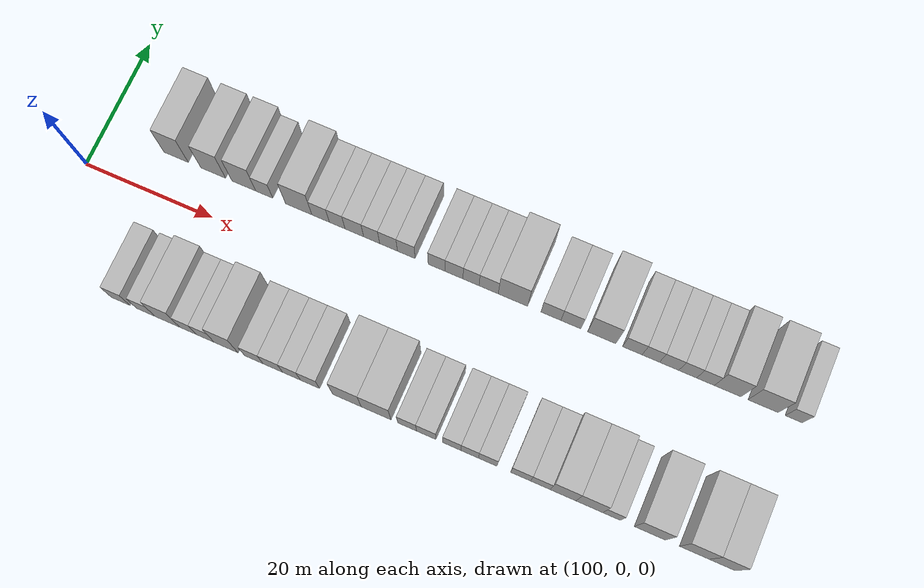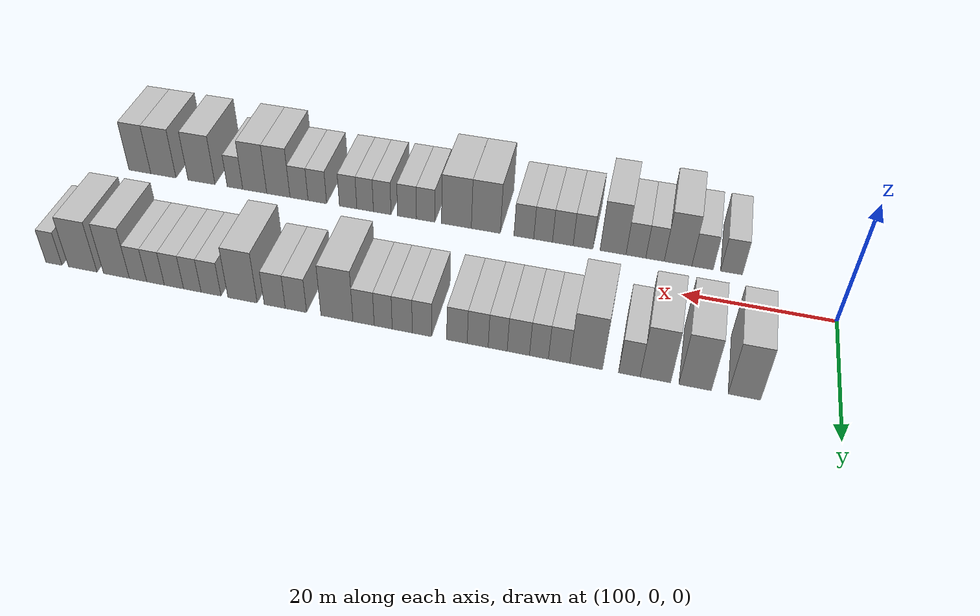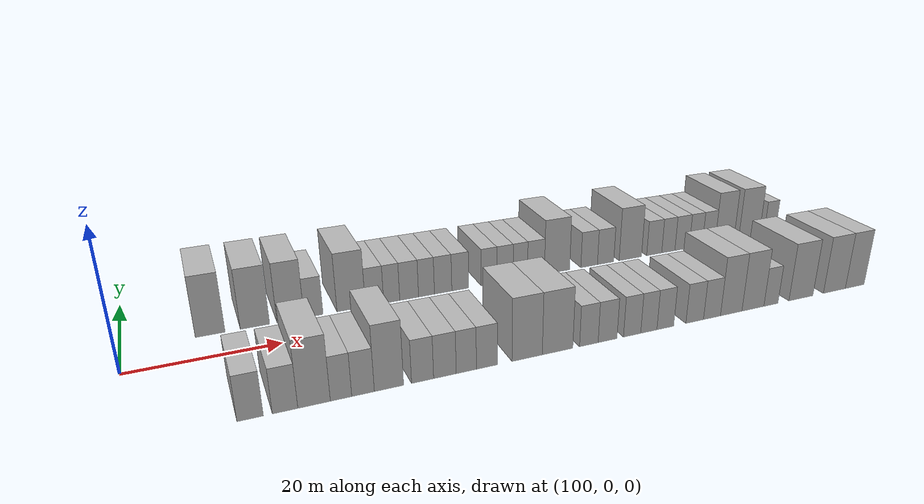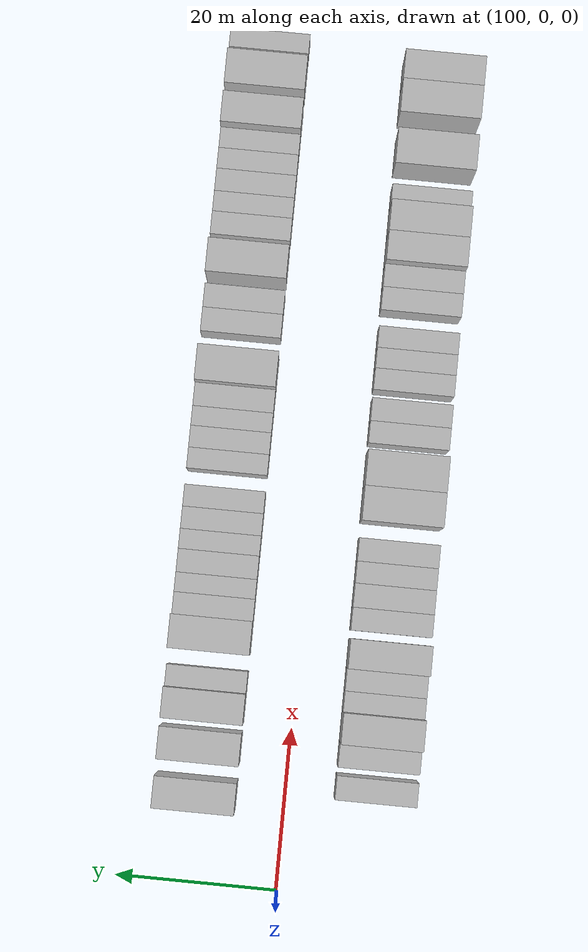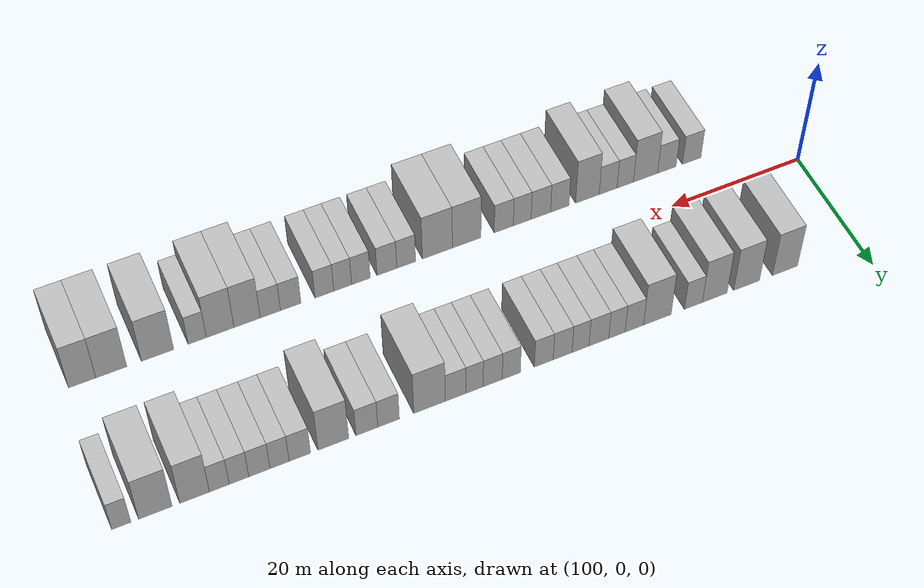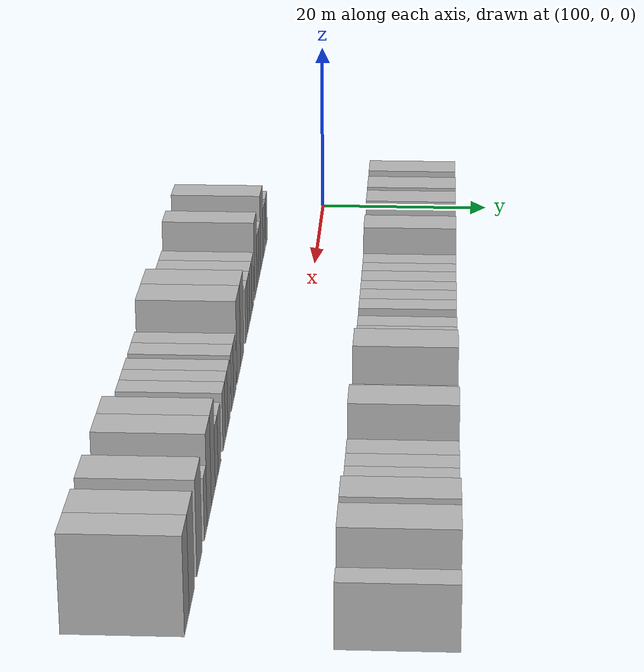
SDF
<sdf version="1.6">
 <world name="default">
  <model name="building_27">
   <static>1</static>
   <pose>111.3026 11.0000 0 0.000000 0.000000 1.570796</pose>
   <link name="link">
    <pose>0 0 4.50 0 0 0</pose>
    <collision name="collision"><geometry><box><size>10.0000 3.8650 9.0000</size></box></geometry></collision>
    <visual name="visual">
     <cast_shadows>0</cast_shadows>
     <geometry><box><size>10.0000 3.8650 9.0000</size></box></geometry>
     <material>
      <script>
       <uri>model://HANNAS_wall/materials/scripts</uri>
       <uri>model://HANNAS_wall/materials/textures</uri>
       <name>vrc/HANNAS_wall</name>
      </script>
     </material>
    </visual>
   </link>
  </model>
  <model name="building_28">
   <static>1</static>
   <pose>117.2045 11.0000 0 0.000000 0.000000 1.570796</pose>
   <link name="link">
    <pose>0 0 4.50 0 0 0</pose>
    <collision name="collision"><geometry><box><size>10.0000 3.9387 9.0000</size></box></geometry></collision>
    <visual name="visual">
     <cast_shadows>0</cast_shadows>
     <geometry><box><size>10.0000 3.9387 9.0000</size></box></geometry>
     <material>
      <script>
       <uri>model://HANNAS_wall/materials/scripts</uri>
       <uri>model://HANNAS_wall/materials/textures</uri>
       <name>vrc/HANNAS_wall</name>
      </script>
     </material>
    </visual>
   </link>
  </model>
  <model name="building_29">
   <static>1</static>
   <pose>122.0515 11.0000 0 0.000000 0.000000 1.570796</pose>
   <link name="link">
    <pose>0 0 4.50 0 0 0</pose>
    <collision name="collision"><geometry><box><size>10.0000 3.7555 9.0000</size></box></geometry></collision>
    <visual name="visual">
     <cast_shadows>0</cast_shadows>
     <geometry><box><size>10.0000 3.7555 9.0000</size></box></geometry>
     <material>
      <script>
       <uri>model://HANNAS_wall/materials/scripts</uri>
       <uri>model://HANNAS_wall/materials/textures</uri>
       <name>vrc/HANNAS_wall</name>
      </script>
     </material>
    </visual>
   </link>
  </model>
  <model name="building_30">
   <static>1</static>
   <pose>125.2642 11.0000 0 0.000000 0.000000 1.570796</pose>
   <link name="link">
    <pose>0 0 3.00 0 0 0</pose>
    <collision name="collision"><geometry><box><size>10.0000 2.6699 6.0000</size></box></geometry></collision>
    <visual name="visual">
     <cast_shadows>0</cast_shadows>
     <geometry><box><size>10.0000 2.6699 6.0000</size></box></geometry>
     <material>
      <script>
       <uri>model://HANNAS_wall/materials/scripts</uri>
       <uri>model://HANNAS_wall/materials/textures</uri>
       <name>vrc/HANNAS_wall</name>
      </script>
     </material>
    </visual>
   </link>
  </model>
  <model name="building_31">
   <static>1</static>
   <pose>130.6579 11.0000 0 0.000000 0.000000 1.570796</pose>
   <link name="link">
    <pose>0 0 4.50 0 0 0</pose>
    <collision name="collision"><geometry><box><size>10.0000 4.1175 9.0000</size></box></geometry></collision>
    <visual name="visual">
     <cast_shadows>0</cast_shadows>
     <geometry><box><size>10.0000 4.1175 9.0000</size></box></geometry>
     <material>
      <script>
       <uri>model://HANNAS_wall/materials/scripts</uri>
       <uri>model://HANNAS_wall/materials/textures</uri>
       <name>vrc/HANNAS_wall</name>
      </script>
     </material>
    </visual>
   </link>
  </model>
  <model name="building_32">
   <static>1</static>
   <pose>134.0792 11.0000 0 0.000000 0.000000 1.570796</pose>
   <link name="link">
    <pose>0 0 3.00 0 0 0</pose>
    <collision name="collision"><geometry><box><size>10.0000 2.7253 6.0000</size></box></geometry></collision>
    <visual name="visual">
     <cast_shadows>0</cast_shadows>
     <geometry><box><size>10.0000 2.7253 6.0000</size></box></geometry>
     <material>
      <script>
       <uri>model://HANNAS_wall/materials/scripts</uri>
       <uri>model://HANNAS_wall/materials/textures</uri>
       <name>vrc/HANNAS_wall</name>
      </script>
     </material>
    </visual>
   </link>
  </model>
  <model name="building_33">
   <static>1</static>
   <pose>136.6524 11.0000 0 0.000000 0.000000 1.570796</pose>
   <link name="link">
    <pose>0 0 3.00 0 0 0</pose>
    <collision name="collision"><geometry><box><size>10.0000 2.4210 6.0000</size></box></geometry></collision>
    <visual name="visual">
     <cast_shadows>0</cast_shadows>
     <geometry><box><size>10.0000 2.4210 6.0000</size></box></geometry>
     <material>
      <script>
       <uri>model://HANNAS_wall/materials/scripts</uri>
       <uri>model://HANNAS_wall/materials/textures</uri>
       <name>vrc/HANNAS_wall</name>
      </script>
     </material>
    </visual>
   </link>
  </model>
  <model name="building_34">
   <static>1</static>
   <pose>139.3036 11.0000 0 0.000000 0.000000 1.570796</pose>
   <link name="link">
    <pose>0 0 3.00 0 0 0</pose>
    <collision name="collision"><geometry><box><size>10.0000 2.8814 6.0000</size></box></geometry></collision>
    <visual name="visual">
     <cast_shadows>0</cast_shadows>
     <geometry><box><size>10.0000 2.8814 6.0000</size></box></geometry>
     <material>
      <script>
       <uri>model://HANNAS_wall/materials/scripts</uri>
       <uri>model://HANNAS_wall/materials/textures</uri>
       <name>vrc/HANNAS_wall</name>
      </script>
     </material>
    </visual>
   </link>
  </model>
  <model name="building_35">
   <static>1</static>
   <pose>141.9804 11.0000 0 0.000000 0.000000 1.570796</pose>
   <link name="link">
    <pose>0 0 3.00 0 0 0</pose>
    <collision name="collision"><geometry><box><size>10.0000 2.4722 6.0000</size></box></geometry></collision>
    <visual name="visual">
     <cast_shadows>0</cast_shadows>
     <geometry><box><size>10.0000 2.4722 6.0000</size></box></geometry>
     <material>
      <script>
       <uri>model://HANNAS_wall/materials/scripts</uri>
       <uri>model://HANNAS_wall/materials/textures</uri>
       <name>vrc/HANNAS_wall</name>
      </script>
     </material>
    </visual>
   </link>
  </model>
  <model name="building_36">
   <static>1</static>
   <pose>144.5878 11.0000 0 0.000000 0.000000 1.570796</pose>
   <link name="link">
    <pose>0 0 3.00 0 0 0</pose>
    <collision name="collision"><geometry><box><size>10.0000 2.7424 6.0000</size></box></geometry></collision>
    <visual name="visual">
     <cast_shadows>0</cast_shadows>
     <geometry><box><size>10.0000 2.7424 6.0000</size></box></geometry>
     <material>
      <script>
       <uri>model://HANNAS_wall/materials/scripts</uri>
       <uri>model://HANNAS_wall/materials/textures</uri>
       <name>vrc/HANNAS_wall</name>
      </script>
     </material>
    </visual>
   </link>
  </model>
  <model name="building_37">
   <static>1</static>
   <pose>147.3143 11.0000 0 0.000000 0.000000 1.570796</pose>
   <link name="link">
    <pose>0 0 3.00 0 0 0</pose>
    <collision name="collision"><geometry><box><size>10.0000 2.7106 6.0000</size></box></geometry></collision>
    <visual name="visual">
     <cast_shadows>0</cast_shadows>
     <geometry><box><size>10.0000 2.7106 6.0000</size></box></geometry>
     <material>
      <script>
       <uri>model://HANNAS_wall/materials/scripts</uri>
       <uri>model://HANNAS_wall/materials/textures</uri>
       <name>vrc/HANNAS_wall</name>
      </script>
     </material>
    </visual>
   </link>
  </model>
  <model name="building_38">
   <static>1</static>
   <pose>151.9646 11.0000 0 0.000000 0.000000 1.570796</pose>
   <link name="link">
    <pose>0 0 3.00 0 0 0</pose>
    <collision name="collision"><geometry><box><size>10.0000 2.5902 6.0000</size></box></geometry></collision>
    <visual name="visual">
     <cast_shadows>0</cast_shadows>
     <geometry><box><size>10.0000 2.5902 6.0000</size></box></geometry>
     <material>
      <script>
       <uri>model://HANNAS_wall/materials/scripts</uri>
       <uri>model://HANNAS_wall/materials/textures</uri>
       <name>vrc/HANNAS_wall</name>
      </script>
     </material>
    </visual>
   </link>
  </model>
  <model name="building_39">
   <static>1</static>
   <pose>154.6111 11.0000 0 0.000000 0.000000 1.570796</pose>
   <link name="link">
    <pose>0 0 3.00 0 0 0</pose>
    <collision name="collision"><geometry><box><size>10.0000 2.7027 6.0000</size></box></geometry></collision>
    <visual name="visual">
     <cast_shadows>0</cast_shadows>
     <geometry><box><size>10.0000 2.7027 6.0000</size></box></geometry>
     <material>
      <script>
       <uri>model://HANNAS_wall/materials/scripts</uri>
       <uri>model://HANNAS_wall/materials/textures</uri>
       <name>vrc/HANNAS_wall</name>
      </script>
     </material>
    </visual>
   </link>
  </model>
  <model name="building_40">
   <static>1</static>
   <pose>157.1853 11.0000 0 0.000000 0.000000 1.570796</pose>
   <link name="link">
    <pose>0 0 3.00 0 0 0</pose>
    <collision name="collision"><geometry><box><size>10.0000 2.4456 6.0000</size></box></geometry></collision>
    <visual name="visual">
     <cast_shadows>0</cast_shadows>
     <geometry><box><size>10.0000 2.4456 6.0000</size></box></geometry>
     <material>
      <script>
       <uri>model://HANNAS_wall/materials/scripts</uri>
       <uri>model://HANNAS_wall/materials/textures</uri>
       <name>vrc/HANNAS_wall</name>
      </script>
     </material>
    </visual>
   </link>
  </model>
  <model name="building_41">
   <static>1</static>
   <pose>159.8622 11.0000 0 0.000000 0.000000 1.570796</pose>
   <link name="link">
    <pose>0 0 3.00 0 0 0</pose>
    <collision name="collision"><geometry><box><size>10.0000 2.9083 6.0000</size></box></geometry></collision>
    <visual name="visual">
     <cast_shadows>0</cast_shadows>
     <geometry><box><size>10.0000 2.9083 6.0000</size></box></geometry>
     <material>
      <script>
       <uri>model://HANNAS_wall/materials/scripts</uri>
       <uri>model://HANNAS_wall/materials/textures</uri>
       <name>vrc/HANNAS_wall</name>
      </script>
     </material>
    </visual>
   </link>
  </model>
  <model name="building_42">
   <static>1</static>
   <pose>163.5277 11.0000 0 0.000000 0.000000 1.570796</pose>
   <link name="link">
    <pose>0 0 4.50 0 0 0</pose>
    <collision name="collision"><geometry><box><size>10.0000 4.4227 9.0000</size></box></geometry></collision>
    <visual name="visual">
     <cast_shadows>0</cast_shadows>
     <geometry><box><size>10.0000 4.4227 9.0000</size></box></geometry>
     <material>
      <script>
       <uri>model://HANNAS_wall/materials/scripts</uri>
       <uri>model://HANNAS_wall/materials/textures</uri>
       <name>vrc/HANNAS_wall</name>
      </script>
     </material>
    </visual>
   </link>
  </model>
  <model name="building_43">
   <static>1</static>
   <pose>169.2356 11.0000 0 0.000000 0.000000 1.570796</pose>
   <link name="link">
    <pose>0 0 3.00 0 0 0</pose>
    <collision name="collision"><geometry><box><size>10.0000 2.9930 6.0000</size></box></geometry></collision>
    <visual name="visual">
     <cast_shadows>0</cast_shadows>
     <geometry><box><size>10.0000 2.9930 6.0000</size></box></geometry>
     <material>
      <script>
       <uri>model://HANNAS_wall/materials/scripts</uri>
       <uri>model://HANNAS_wall/materials/textures</uri>
       <name>vrc/HANNAS_wall</name>
      </script>
     </material>
    </visual>
   </link>
  </model>
  <model name="building_44">
   <static>1</static>
   <pose>172.2272 11.0000 0 0.000000 0.000000 1.570796</pose>
   <link name="link">
    <pose>0 0 3.00 0 0 0</pose>
    <collision name="collision"><geometry><box><size>10.0000 2.9903 6.0000</size></box></geometry></collision>
    <visual name="visual">
     <cast_shadows>0</cast_shadows>
     <geometry><box><size>10.0000 2.9903 6.0000</size></box></geometry>
     <material>
      <script>
       <uri>model://HANNAS_wall/materials/scripts</uri>
       <uri>model://HANNAS_wall/materials/textures</uri>
       <name>vrc/HANNAS_wall</name>
      </script>
     </material>
    </visual>
   </link>
  </model>
  <model name="building_45">
   <static>1</static>
   <pose>176.8216 11.0000 0 0.000000 0.000000 1.570796</pose>
   <link name="link">
    <pose>0 0 4.50 0 0 0</pose>
    <collision name="collision"><geometry><box><size>10.0000 4.1985 9.0000</size></box></geometry></collision>
    <visual name="visual">
     <cast_shadows>0</cast_shadows>
     <geometry><box><size>10.0000 4.1985 9.0000</size></box></geometry>
     <material>
      <script>
       <uri>model://HANNAS_wall/materials/scripts</uri>
       <uri>model://HANNAS_wall/materials/textures</uri>
       <name>vrc/HANNAS_wall</name>
      </script>
     </material>
    </visual>
   </link>
  </model>
  <model name="building_46">
   <static>1</static>
   <pose>181.3651 11.0000 0 0.000000 0.000000 1.570796</pose>
   <link name="link">
    <pose>0 0 3.00 0 0 0</pose>
    <collision name="collision"><geometry><box><size>10.0000 2.8885 6.0000</size></box></geometry></collision>
    <visual name="visual">
     <cast_shadows>0</cast_shadows>
     <geometry><box><size>10.0000 2.8885 6.0000</size></box></geometry>
     <material>
      <script>
       <uri>model://HANNAS_wall/materials/scripts</uri>
       <uri>model://HANNAS_wall/materials/textures</uri>
       <name>vrc/HANNAS_wall</name>
      </script>
     </material>
    </visual>
   </link>
  </model>
  <model name="building_47">
   <static>1</static>
   <pose>184.0944 11.0000 0 0.000000 0.000000 1.570796</pose>
   <link name="link">
    <pose>0 0 3.00 0 0 0</pose>
    <collision name="collision"><geometry><box><size>10.0000 2.5700 6.0000</size></box></geometry></collision>
    <visual name="visual">
     <cast_shadows>0</cast_shadows>
     <geometry><box><size>10.0000 2.5700 6.0000</size></box></geometry>
     <material>
      <script>
       <uri>model://HANNAS_wall/materials/scripts</uri>
       <uri>model://HANNAS_wall/materials/textures</uri>
       <name>vrc/HANNAS_wall</name>
      </script>
     </material>
    </visual>
   </link>
  </model>
  <model name="building_48">
   <static>1</static>
   <pose>186.7950 11.0000 0 0.000000 0.000000 1.570796</pose>
   <link name="link">
    <pose>0 0 3.00 0 0 0</pose>
    <collision name="collision"><geometry><box><size>10.0000 2.8314 6.0000</size></box></geometry></collision>
    <visual name="visual">
     <cast_shadows>0</cast_shadows>
     <geometry><box><size>10.0000 2.8314 6.0000</size></box></geometry>
     <material>
      <script>
       <uri>model://HANNAS_wall/materials/scripts</uri>
       <uri>model://HANNAS_wall/materials/textures</uri>
       <name>vrc/HANNAS_wall</name>
      </script>
     </material>
    </visual>
   </link>
  </model>
  <model name="building_49">
   <static>1</static>
   <pose>189.5185 11.0000 0 0.000000 0.000000 1.570796</pose>
   <link name="link">
    <pose>0 0 3.00 0 0 0</pose>
    <collision name="collision"><geometry><box><size>10.0000 2.6156 6.0000</size></box></geometry></collision>
    <visual name="visual">
     <cast_shadows>0</cast_shadows>
     <geometry><box><size>10.0000 2.6156 6.0000</size></box></geometry>
     <material>
      <script>
       <uri>model://HANNAS_wall/materials/scripts</uri>
       <uri>model://HANNAS_wall/materials/textures</uri>
       <name>vrc/HANNAS_wall</name>
      </script>
     </material>
    </visual>
   </link>
  </model>
  <model name="building_50">
   <static>1</static>
   <pose>192.1290 11.0000 0 0.000000 0.000000 1.570796</pose>
   <link name="link">
    <pose>0 0 3.00 0 0 0</pose>
    <collision name="collision"><geometry><box><size>10.0000 2.6054 6.0000</size></box></geometry></collision>
    <visual name="visual">
     <cast_shadows>0</cast_shadows>
     <geometry><box><size>10.0000 2.6054 6.0000</size></box></geometry>
     <material>
      <script>
       <uri>model://HANNAS_wall/materials/scripts</uri>
       <uri>model://HANNAS_wall/materials/textures</uri>
       <name>vrc/HANNAS_wall</name>
      </script>
     </material>
    </visual>
   </link>
  </model>
  <model name="building_51">
   <static>1</static>
   <pose>195.3765 11.0000 0 0.000000 0.000000 1.570796</pose>
   <link name="link">
    <pose>0 0 4.50 0 0 0</pose>
    <collision name="collision"><geometry><box><size>10.0000 3.8895 9.0000</size></box></geometry></collision>
    <visual name="visual">
     <cast_shadows>0</cast_shadows>
     <geometry><box><size>10.0000 3.8895 9.0000</size></box></geometry>
     <material>
      <script>
       <uri>model://HANNAS_wall/materials/scripts</uri>
       <uri>model://HANNAS_wall/materials/textures</uri>
       <name>vrc/HANNAS_wall</name>
      </script>
     </material>
    </visual>
   </link>
  </model>
  <model name="building_52">
   <static>1</static>
   <pose>200.5058 11.0000 0 0.000000 0.000000 1.570796</pose>
   <link name="link">
    <pose>0 0 4.50 0 0 0</pose>
    <collision name="collision"><geometry><box><size>10.0000 4.3691 9.0000</size></box></geometry></collision>
    <visual name="visual">
     <cast_shadows>0</cast_shadows>
     <geometry><box><size>10.0000 4.3691 9.0000</size></box></geometry>
     <material>
      <script>
       <uri>model://HANNAS_wall/materials/scripts</uri>
       <uri>model://HANNAS_wall/materials/textures</uri>
       <name>vrc/HANNAS_wall</name>
      </script>
     </material>
    </visual>
   </link>
  </model>
  <model name="building_53">
   <static>1</static>
   <pose>204.9288 11.0000 0 0.000000 0.000000 1.570796</pose>
   <link name="link">
    <pose>0 0 3.00 0 0 0</pose>
    <collision name="collision"><geometry><box><size>10.0000 2.4771 6.0000</size></box></geometry></collision>
    <visual name="visual">
     <cast_shadows>0</cast_shadows>
     <geometry><box><size>10.0000 2.4771 6.0000</size></box></geometry>
     <material>
      <script>
       <uri>model://HANNAS_wall/materials/scripts</uri>
       <uri>model://HANNAS_wall/materials/textures</uri>
       <name>vrc/HANNAS_wall</name>
      </script>
     </material>
    </visual>
   </link>
  </model>
  <model name="building_80">
   <static>1</static>
   <pose>113.6962 -11.0000 0 0.000000 0.000000 1.570796</pose>
   <link name="link">
    <pose>0 0 3.00 0 0 0</pose>
    <collision name="collision"><geometry><box><size>10.0000 2.9397 6.0000</size></box></geometry></collision>
    <visual name="visual">
     <cast_shadows>0</cast_shadows>
     <geometry><box><size>10.0000 2.9397 6.0000</size></box></geometry>
     <material>
      <script>
       <uri>model://HANNAS_wall/materials/scripts</uri>
       <uri>model://HANNAS_wall/materials/textures</uri>
       <name>vrc/HANNAS_wall</name>
      </script>
     </material>
    </visual>
   </link>
  </model>
  <model name="building_81">
   <static>1</static>
   <pose>117.6211 -11.0000 0 0.000000 0.000000 1.570796</pose>
   <link name="link">
    <pose>0 0 3.00 0 0 0</pose>
    <collision name="collision"><geometry><box><size>10.0000 2.9101 6.0000</size></box></geometry></collision>
    <visual name="visual">
     <cast_shadows>0</cast_shadows>
     <geometry><box><size>10.0000 2.9101 6.0000</size></box></geometry>
     <material>
      <script>
       <uri>model://HANNAS_wall/materials/scripts</uri>
       <uri>model://HANNAS_wall/materials/textures</uri>
       <name>vrc/HANNAS_wall</name>
      </script>
     </material>
    </visual>
   </link>
  </model>
  <model name="building_82">
   <static>1</static>
   <pose>120.9748 -11.0000 0 0.000000 0.000000 1.570796</pose>
   <link name="link">
    <pose>0 0 4.50 0 0 0</pose>
    <collision name="collision"><geometry><box><size>10.0000 3.7973 9.0000</size></box></geometry></collision>
    <visual name="visual">
     <cast_shadows>0</cast_shadows>
     <geometry><box><size>10.0000 3.7973 9.0000</size></box></geometry>
     <material>
      <script>
       <uri>model://HANNAS_wall/materials/scripts</uri>
       <uri>model://HANNAS_wall/materials/textures</uri>
       <name>vrc/HANNAS_wall</name>
      </script>
     </material>
    </visual>
   </link>
  </model>
  <model name="building_83">
   <static>1</static>
   <pose>124.1524 -11.0000 0 0.000000 0.000000 1.570796</pose>
   <link name="link">
    <pose>0 0 3.00 0 0 0</pose>
    <collision name="collision"><geometry><box><size>10.0000 2.5580 6.0000</size></box></geometry></collision>
    <visual name="visual">
     <cast_shadows>0</cast_shadows>
     <geometry><box><size>10.0000 2.5580 6.0000</size></box></geometry>
     <material>
      <script>
       <uri>model://HANNAS_wall/materials/scripts</uri>
       <uri>model://HANNAS_wall/materials/textures</uri>
       <name>vrc/HANNAS_wall</name>
      </script>
     </material>
    </visual>
   </link>
  </model>
  <model name="building_84">
   <static>1</static>
   <pose>126.8090 -11.0000 0 0.000000 0.000000 1.570796</pose>
   <link name="link">
    <pose>0 0 3.00 0 0 0</pose>
    <collision name="collision"><geometry><box><size>10.0000 2.7551 6.0000</size></box></geometry></collision>
    <visual name="visual">
     <cast_shadows>0</cast_shadows>
     <geometry><box><size>10.0000 2.7551 6.0000</size></box></geometry>
     <material>
      <script>
       <uri>model://HANNAS_wall/materials/scripts</uri>
       <uri>model://HANNAS_wall/materials/textures</uri>
       <name>vrc/HANNAS_wall</name>
      </script>
     </material>
    </visual>
   </link>
  </model>
  <model name="building_85">
   <static>1</static>
   <pose>130.0095 -11.0000 0 0.000000 0.000000 1.570796</pose>
   <link name="link">
    <pose>0 0 4.50 0 0 0</pose>
    <collision name="collision"><geometry><box><size>10.0000 3.6460 9.0000</size></box></geometry></collision>
    <visual name="visual">
     <cast_shadows>0</cast_shadows>
     <geometry><box><size>10.0000 3.6460 9.0000</size></box></geometry>
     <material>
      <script>
       <uri>model://HANNAS_wall/materials/scripts</uri>
       <uri>model://HANNAS_wall/materials/textures</uri>
       <name>vrc/HANNAS_wall</name>
      </script>
     </material>
    </visual>
   </link>
  </model>
  <model name="building_86">
   <static>1</static>
   <pose>134.2487 -11.0000 0 0.000000 0.000000 1.570796</pose>
   <link name="link">
    <pose>0 0 3.00 0 0 0</pose>
    <collision name="collision"><geometry><box><size>10.0000 2.8323 6.0000</size></box></geometry></collision>
    <visual name="visual">
     <cast_shadows>0</cast_shadows>
     <geometry><box><size>10.0000 2.8323 6.0000</size></box></geometry>
     <material>
      <script>
       <uri>model://HANNAS_wall/materials/scripts</uri>
       <uri>model://HANNAS_wall/materials/textures</uri>
       <name>vrc/HANNAS_wall</name>
      </script>
     </material>
    </visual>
   </link>
  </model>
  <model name="building_87">
   <static>1</static>
   <pose>137.1438 -11.0000 0 0.000000 0.000000 1.570796</pose>
   <link name="link">
    <pose>0 0 3.00 0 0 0</pose>
    <collision name="collision"><geometry><box><size>10.0000 2.9581 6.0000</size></box></geometry></collision>
    <visual name="visual">
     <cast_shadows>0</cast_shadows>
     <geometry><box><size>10.0000 2.9581 6.0000</size></box></geometry>
     <material>
      <script>
       <uri>model://HANNAS_wall/materials/scripts</uri>
       <uri>model://HANNAS_wall/materials/textures</uri>
       <name>vrc/HANNAS_wall</name>
      </script>
     </material>
    </visual>
   </link>
  </model>
  <model name="building_88">
   <static>1</static>
   <pose>139.9713 -11.0000 0 0.000000 0.000000 1.570796</pose>
   <link name="link">
    <pose>0 0 3.00 0 0 0</pose>
    <collision name="collision"><geometry><box><size>10.0000 2.6969 6.0000</size></box></geometry></collision>
    <visual name="visual">
     <cast_shadows>0</cast_shadows>
     <geometry><box><size>10.0000 2.6969 6.0000</size></box></geometry>
     <material>
      <script>
       <uri>model://HANNAS_wall/materials/scripts</uri>
       <uri>model://HANNAS_wall/materials/textures</uri>
       <name>vrc/HANNAS_wall</name>
      </script>
     </material>
    </visual>
   </link>
  </model>
  <model name="building_89">
   <static>1</static>
   <pose>142.7549 -11.0000 0 0.000000 0.000000 1.570796</pose>
   <link name="link">
    <pose>0 0 3.00 0 0 0</pose>
    <collision name="collision"><geometry><box><size>10.0000 2.8703 6.0000</size></box></geometry></collision>
    <visual name="visual">
     <cast_shadows>0</cast_shadows>
     <geometry><box><size>10.0000 2.8703 6.0000</size></box></geometry>
     <material>
      <script>
       <uri>model://HANNAS_wall/materials/scripts</uri>
       <uri>model://HANNAS_wall/materials/textures</uri>
       <name>vrc/HANNAS_wall</name>
      </script>
     </material>
    </visual>
   </link>
  </model>
  <model name="building_90">
   <static>1</static>
   <pose>148.3258 -11.0000 0 0.000000 0.000000 1.570796</pose>
   <link name="link">
    <pose>0 0 4.50 0 0 0</pose>
    <collision name="collision"><geometry><box><size>10.0000 4.2714 9.0000</size></box></geometry></collision>
    <visual name="visual">
     <cast_shadows>0</cast_shadows>
     <geometry><box><size>10.0000 4.2714 9.0000</size></box></geometry>
     <material>
      <script>
       <uri>model://HANNAS_wall/materials/scripts</uri>
       <uri>model://HANNAS_wall/materials/textures</uri>
       <name>vrc/HANNAS_wall</name>
      </script>
     </material>
    </visual>
   </link>
  </model>
  <model name="building_91">
   <static>1</static>
   <pose>152.6772 -11.0000 0 0.000000 0.000000 1.570796</pose>
   <link name="link">
    <pose>0 0 4.50 0 0 0</pose>
    <collision name="collision"><geometry><box><size>10.0000 4.4313 9.0000</size></box></geometry></collision>
    <visual name="visual">
     <cast_shadows>0</cast_shadows>
     <geometry><box><size>10.0000 4.4313 9.0000</size></box></geometry>
     <material>
      <script>
       <uri>model://HANNAS_wall/materials/scripts</uri>
       <uri>model://HANNAS_wall/materials/textures</uri>
       <name>vrc/HANNAS_wall</name>
      </script>
     </material>
    </visual>
   </link>
  </model>
  <model name="building_92">
   <static>1</static>
   <pose>157.2814 -11.0000 0 0.000000 0.000000 1.570796</pose>
   <link name="link">
    <pose>0 0 3.00 0 0 0</pose>
    <collision name="collision"><geometry><box><size>10.0000 2.7770 6.0000</size></box></geometry></collision>
    <visual name="visual">
     <cast_shadows>0</cast_shadows>
     <geometry><box><size>10.0000 2.7770 6.0000</size></box></geometry>
     <material>
      <script>
       <uri>model://HANNAS_wall/materials/scripts</uri>
       <uri>model://HANNAS_wall/materials/textures</uri>
       <name>vrc/HANNAS_wall</name>
      </script>
     </material>
    </visual>
   </link>
  </model>
  <model name="building_93">
   <static>1</static>
   <pose>160.1053 -11.0000 0 0.000000 0.000000 1.570796</pose>
   <link name="link">
    <pose>0 0 3.00 0 0 0</pose>
    <collision name="collision"><geometry><box><size>10.0000 2.8707 6.0000</size></box></geometry></collision>
    <visual name="visual">
     <cast_shadows>0</cast_shadows>
     <geometry><box><size>10.0000 2.8707 6.0000</size></box></geometry>
     <material>
      <script>
       <uri>model://HANNAS_wall/materials/scripts</uri>
       <uri>model://HANNAS_wall/materials/textures</uri>
       <name>vrc/HANNAS_wall</name>
      </script>
     </material>
    </visual>
   </link>
  </model>
  <model name="building_94">
   <static>1</static>
   <pose>163.8860 -11.0000 0 0.000000 0.000000 1.570796</pose>
   <link name="link">
    <pose>0 0 3.00 0 0 0</pose>
    <collision name="collision"><geometry><box><size>10.0000 2.6907 6.0000</size></box></geometry></collision>
    <visual name="visual">
     <cast_shadows>0</cast_shadows>
     <geometry><box><size>10.0000 2.6907 6.0000</size></box></geometry>
     <material>
      <script>
       <uri>model://HANNAS_wall/materials/scripts</uri>
       <uri>model://HANNAS_wall/materials/textures</uri>
       <name>vrc/HANNAS_wall</name>
      </script>
     </material>
    </visual>
   </link>
  </model>
  <model name="building_95">
   <static>1</static>
   <pose>166.5133 -11.0000 0 0.000000 0.000000 1.570796</pose>
   <link name="link">
    <pose>0 0 3.00 0 0 0</pose>
    <collision name="collision"><geometry><box><size>10.0000 2.5637 6.0000</size></box></geometry></collision>
    <visual name="visual">
     <cast_shadows>0</cast_shadows>
     <geometry><box><size>10.0000 2.5637 6.0000</size></box></geometry>
     <material>
      <script>
       <uri>model://HANNAS_wall/materials/scripts</uri>
       <uri>model://HANNAS_wall/materials/textures</uri>
       <name>vrc/HANNAS_wall</name>
      </script>
     </material>
    </visual>
   </link>
  </model>
  <model name="building_96">
   <static>1</static>
   <pose>169.1461 -11.0000 0 0.000000 0.000000 1.570796</pose>
   <link name="link">
    <pose>0 0 3.00 0 0 0</pose>
    <collision name="collision"><geometry><box><size>10.0000 2.7020 6.0000</size></box></geometry></collision>
    <visual name="visual">
     <cast_shadows>0</cast_shadows>
     <geometry><box><size>10.0000 2.7020 6.0000</size></box></geometry>
     <material>
      <script>
       <uri>model://HANNAS_wall/materials/scripts</uri>
       <uri>model://HANNAS_wall/materials/textures</uri>
       <name>vrc/HANNAS_wall</name>
      </script>
     </material>
    </visual>
   </link>
  </model>
  <model name="building_97">
   <static>1</static>
   <pose>173.9573 -11.0000 0 0.000000 0.000000 1.570796</pose>
   <link name="link">
    <pose>0 0 3.00 0 0 0</pose>
    <collision name="collision"><geometry><box><size>10.0000 2.9205 6.0000</size></box></geometry></collision>
    <visual name="visual">
     <cast_shadows>0</cast_shadows>
     <geometry><box><size>10.0000 2.9205 6.0000</size></box></geometry>
     <material>
      <script>
       <uri>model://HANNAS_wall/materials/scripts</uri>
       <uri>model://HANNAS_wall/materials/textures</uri>
       <name>vrc/HANNAS_wall</name>
      </script>
     </material>
    </visual>
   </link>
  </model>
  <model name="building_98">
   <static>1</static>
   <pose>176.8498 -11.0000 0 0.000000 0.000000 1.570796</pose>
   <link name="link">
    <pose>0 0 3.00 0 0 0</pose>
    <collision name="collision"><geometry><box><size>10.0000 2.8645 6.0000</size></box></geometry></collision>
    <visual name="visual">
     <cast_shadows>0</cast_shadows>
     <geometry><box><size>10.0000 2.8645 6.0000</size></box></geometry>
     <material>
      <script>
       <uri>model://HANNAS_wall/materials/scripts</uri>
       <uri>model://HANNAS_wall/materials/textures</uri>
       <name>vrc/HANNAS_wall</name>
      </script>
     </material>
    </visual>
   </link>
  </model>
  <model name="building_99">
   <static>1</static>
   <pose>180.1335 -11.0000 0 0.000000 0.000000 1.570796</pose>
   <link name="link">
    <pose>0 0 4.50 0 0 0</pose>
    <collision name="collision"><geometry><box><size>10.0000 3.7030 9.0000</size></box></geometry></collision>
    <visual name="visual">
     <cast_shadows>0</cast_shadows>
     <geometry><box><size>10.0000 3.7030 9.0000</size></box></geometry>
     <material>
      <script>
       <uri>model://HANNAS_wall/materials/scripts</uri>
       <uri>model://HANNAS_wall/materials/textures</uri>
       <name>vrc/HANNAS_wall</name>
      </script>
     </material>
    </visual>
   </link>
  </model>
  <model name="building_100">
   <static>1</static>
   <pose>183.9183 -11.0000 0 0.000000 0.000000 1.570796</pose>
   <link name="link">
    <pose>0 0 4.50 0 0 0</pose>
    <collision name="collision"><geometry><box><size>10.0000 3.8666 9.0000</size></box></geometry></collision>
    <visual name="visual">
     <cast_shadows>0</cast_shadows>
     <geometry><box><size>10.0000 3.8666 9.0000</size></box></geometry>
     <material>
      <script>
       <uri>model://HANNAS_wall/materials/scripts</uri>
       <uri>model://HANNAS_wall/materials/textures</uri>
       <name>vrc/HANNAS_wall</name>
      </script>
     </material>
    </visual>
   </link>
  </model>
  <model name="building_101">
   <static>1</static>
   <pose>187.1120 -11.0000 0 0.000000 0.000000 1.570796</pose>
   <link name="link">
    <pose>0 0 3.00 0 0 0</pose>
    <collision name="collision"><geometry><box><size>10.0000 2.5207 6.0000</size></box></geometry></collision>
    <visual name="visual">
     <cast_shadows>0</cast_shadows>
     <geometry><box><size>10.0000 2.5207 6.0000</size></box></geometry>
     <material>
      <script>
       <uri>model://HANNAS_wall/materials/scripts</uri>
       <uri>model://HANNAS_wall/materials/textures</uri>
       <name>vrc/HANNAS_wall</name>
      </script>
     </material>
    </visual>
   </link>
  </model>
  <model name="building_102">
   <static>1</static>
   <pose>192.5912 -11.0000 0 0.000000 0.000000 1.570796</pose>
   <link name="link">
    <pose>0 0 4.50 0 0 0</pose>
    <collision name="collision"><geometry><box><size>10.0000 4.4378 9.0000</size></box></geometry></collision>
    <visual name="visual">
     <cast_shadows>0</cast_shadows>
     <geometry><box><size>10.0000 4.4378 9.0000</size></box></geometry>
     <material>
      <script>
       <uri>model://HANNAS_wall/materials/scripts</uri>
       <uri>model://HANNAS_wall/materials/textures</uri>
       <name>vrc/HANNAS_wall</name>
      </script>
     </material>
    </visual>
   </link>
  </model>
  <model name="building_103">
   <static>1</static>
   <pose>198.9118 -11.0000 0 0.000000 0.000000 1.570796</pose>
   <link name="link">
    <pose>0 0 4.50 0 0 0</pose>
    <collision name="collision"><geometry><box><size>10.0000 4.2033 9.0000</size></box></geometry></collision>
    <visual name="visual">
     <cast_shadows>0</cast_shadows>
     <geometry><box><size>10.0000 4.2033 9.0000</size></box></geometry>
     <material>
      <script>
       <uri>model://HANNAS_wall/materials/scripts</uri>
       <uri>model://HANNAS_wall/materials/textures</uri>
       <name>vrc/HANNAS_wall</name>
      </script>
     </material>
    </visual>
   </link>
  </model>
  <model name="building_104">
   <static>1</static>
   <pose>202.8498 -11.0000 0 0.000000 0.000000 1.570796</pose>
   <link name="link">
    <pose>0 0 4.50 0 0 0</pose>
    <collision name="collision"><geometry><box><size>10.0000 3.6728 9.0000</size></box></geometry></collision>
    <visual name="visual">
     <cast_shadows>0</cast_shadows>
     <geometry><box><size>10.0000 3.6728 9.0000</size></box></geometry>
     <material>
      <script>
       <uri>model://HANNAS_wall/materials/scripts</uri>
       <uri>model://HANNAS_wall/materials/textures</uri>
       <name>vrc/HANNAS_wall</name>
      </script>
     </material>
    </visual>
   </link>
  </model>
 </world>
</sdf>
